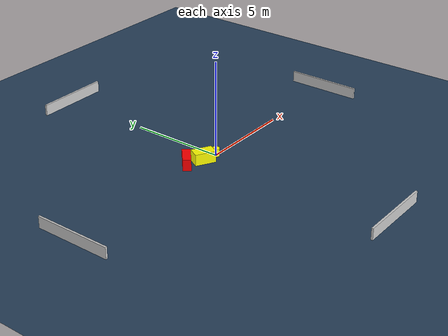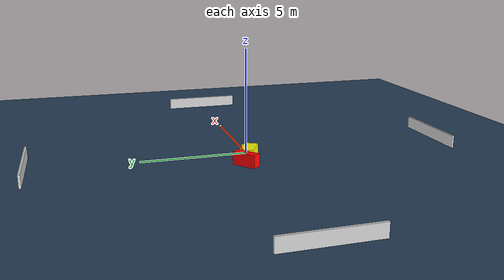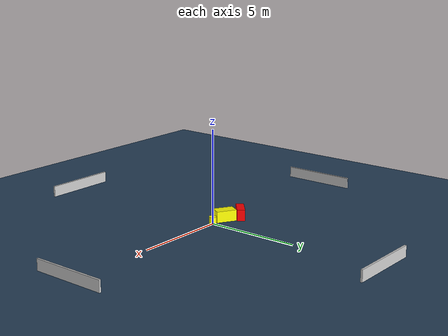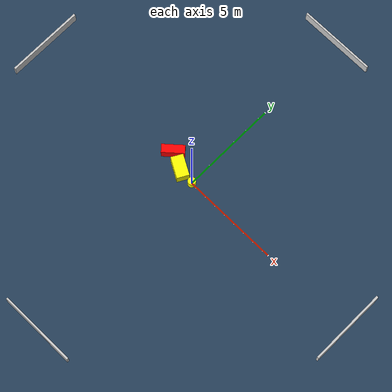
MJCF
<?xml version="1.0" ?>
<mujoco model="generated_environment">
  <option timestep="0.01" integrator="RK4" cone="elliptic"/>
  <default>
    <geom density="1"/>
  </default>
  <asset>
    <texture builtin="gradient" height="3072" name="skybox" rgb1="0.3 0.5 0.7" rgb2="0 0 0" type="skybox" width="512"/>
    <texture builtin="checker" height="300" name="groundplane" rgb1="0.2 0.3 0.4" rgb2="0.1 0.2 0.3" type="2d" width="300"/>
    <material name="groundplane" reflectance="0.2" texrepeat="5 5" texture="groundplane"/>
  </asset>
  <worldbody>
    <light dir="0 0 -1" directional="true" pos="0 0 1.5"/>
    <geom condim="3" friction="0.5 0.005 0.001" material="groundplane" name="floor" pos="0 0 0" size="0 0 0.05" type="plane"/>
    <body name="walls">
      <geom name="wall_1" condim="4" pos="-10.0 0.0 0.3" rgba="0.800000011920929 0.800000011920929 0.800000011920929 1.0" size="0.05 2.0 0.3" type="box"/>
      <geom name="wall_2" condim="4" pos="10.0 0.0 0.3" rgba="0.800000011920929 0.800000011920929 0.800000011920929 1.0" size="0.05 2.0 0.3" type="box"/>
      <geom name="wall_3" condim="4" pos="0.0 -10.0 0.3" rgba="0.800000011920929 0.800000011920929 0.800000011920929 1.0" size="2.0 0.05 0.3" type="box"/>
      <geom name="wall_4" condim="4" pos="0.0 10.0 0.3" rgba="0.800000011920929 0.800000011920929 0.800000011920929 1.0" size="2.0 0.05 0.3" type="box"/>
    </body>
    <body name="robot">
      <joint name="joint_x" type="slide" pos="0 0 0" axis="1 0 0"/>
      <joint name="joint_y" type="slide" pos="0 0 0" axis="0 1 0"/>
      <geom name="robot" type="cylinder" pos="0.0 0.0 0.2" size="0.2 0.2 0.0" mass="5.0" friction="1.0 0.005 0.0001" condim="4" rgba="1.0 1.0 0.0 1.0"/>
    </body>
    <body name="obstacle_1_movable">
      <geom name="obstacle_1_movable" condim="4" pos="-0.8737651386247398 0.09178307463447123 0.3" euler="0 0 150.70228772320328" friction="0.0 0.005 0.001" rgba="1.0 1.0 0.0 1.0" size="0.5467980393170604 0.31425152607866086 0.3" type="box" mass="0.1"/>
      <joint type="free"/>
    </body>
    <body name="obstacle_2_static">
      <geom name="obstacle_2_static" condim="4" pos="-1.7132294237514794 0.47943320072227874 0.3" euler="0 0 131.41801375644502" friction="0.0 0.005 0.001" rgba="1.0 0.0 0.0 1.0" size="0.21158760709825764 0.5705652719019166 0.3" type="box"/>
    </body>
  </worldbody>
  <actuator>
    <motor name="actuator_x" joint="joint_x" gear="1" ctrlrange="-1 1"/>
    <motor name="actuator_y" joint="joint_y" gear="1" ctrlrange="-1 1"/>
  </actuator>
</mujoco>
